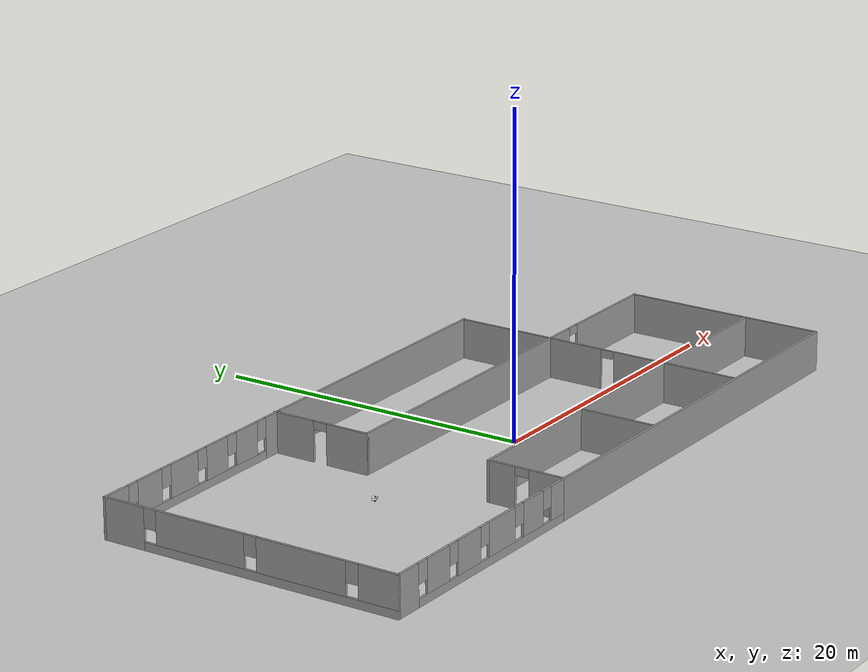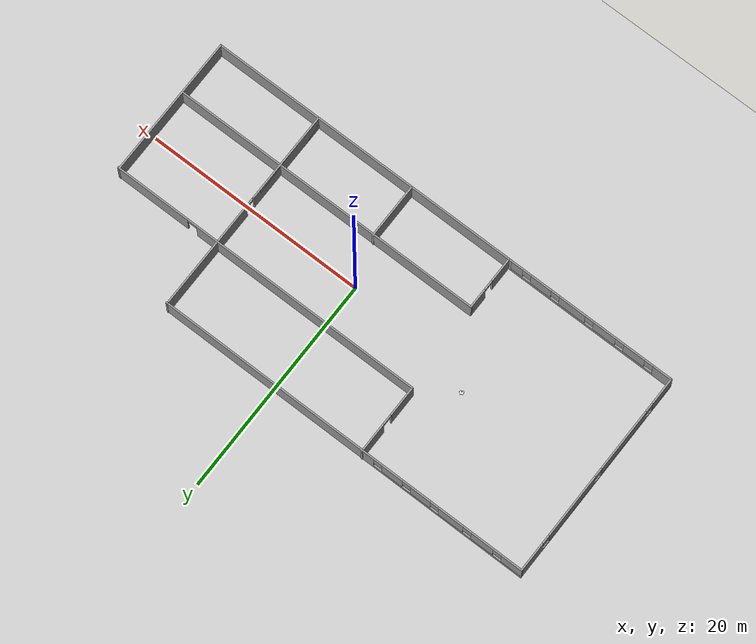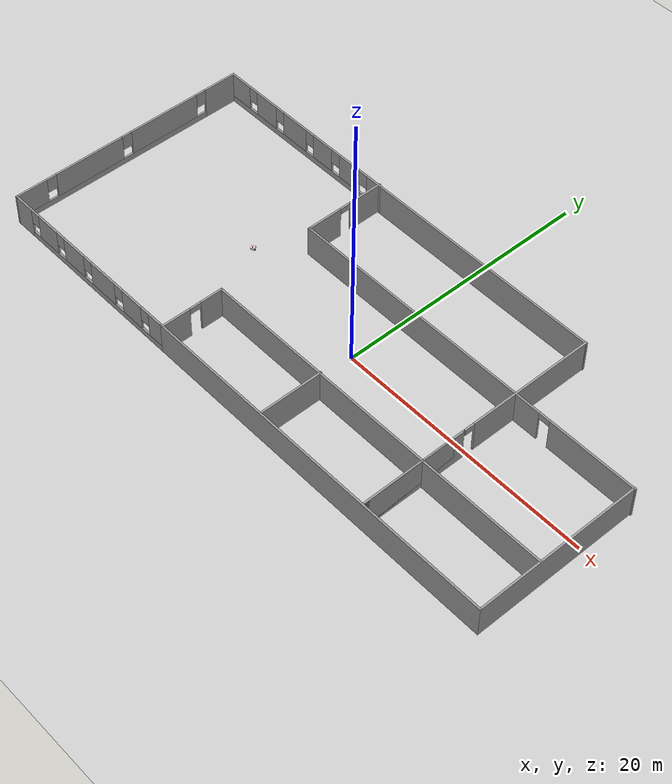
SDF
<sdf version="1.7">
 <world name="default">
  <light name="sun" type="directional">
   <pose>0 0 10 0 -0 0</pose>
   <diffuse>0.8 0.8 0.8 1</diffuse>
   <specular>0.2 0.2 0.2 1</specular>
   <attenuation>
    <range>1000</range>
    <constant>0.9</constant>
    <linear>0.01</linear>
    <quadratic>0.001</quadratic>
   </attenuation>
   <direction>-0.5 0.1 -0.9</direction>
   <spot><inner_angle>0</inner_angle><outer_angle>0</outer_angle><falloff>0</falloff></spot>
  </light>
  <model name="ground_plane">
   <static>1</static>
   <link name="link">
    <collision name="collision">
     <geometry><plane><normal>0 0 1</normal><size>100 100</size></plane></geometry>
     <surface>
      <contact><collide_bitmask>65535</collide_bitmask></contact>
      <friction><ode><mu>100</mu><mu2>50</mu2></ode></friction>
     </surface>
    </collision>
    <visual name="visual">
     <cast_shadows>0</cast_shadows>
     <geometry><plane><normal>0 0 1</normal><size>100 100</size></plane></geometry>
     <material>
      <script><uri>file://media/materials/scripts/gazebo.material</uri><name>Gazebo/Grey</name></script>
     </material>
    </visual>
   </link>
  </model>
  <gravity>0 0 -9.8</gravity>
  <magnetic_field>6e-06 2.3e-05 -4.2e-05</magnetic_field>
  <atmosphere type="adiabatic"/>
  <physics type="ode">
   <max_step_size>0.001</max_step_size>
   <real_time_factor>1</real_time_factor>
   <real_time_update_rate>1000</real_time_update_rate>
  </physics>
  <scene><ambient>0.4 0.4 0.4 1</ambient><background>0.7 0.7 0.7 1</background><shadows>1</shadows></scene>
  <spherical_coordinates>
   <surface_model>EARTH_WGS84</surface_model>
   <latitude_deg>0</latitude_deg>
   <longitude_deg>0</longitude_deg>
   <elevation>0</elevation>
   <heading_deg>0</heading_deg>
  </spherical_coordinates>
  <model name="my_bot">
   <link name="base_link">
    <inertial>
     <pose>0.055714 0 0.078571 0 -0 0</pose>
     <mass>0.7</mass>
     <inertia>
      <ixx>0.0064169</ixx>
      <ixy>0</ixy>
      <ixz>0.00118929</ixz>
      <iyy>0.00745405</iyy>
      <iyz>0</iyz>
      <izz>0.00876214</izz>
     </inertia>
    </inertial>
    <collision name="base_link_fixed_joint_lump__chassis_collision">
     <pose>0.05 0 0.075 0 -0 0</pose>
     <geometry><box><size>0.3 0.3 0.15</size></box></geometry>
    </collision>
    <collision name="base_link_fixed_joint_lump__caster_wheel_collision_1">
     <pose>0.14 0 0 0 -0 0</pose>
     <geometry><sphere><radius>0.05</radius></sphere></geometry>
     <surface><friction><ode><mu>0.001</mu><mu2>0.001</mu2></ode></friction></surface>
    </collision>
    <collision name="base_link_fixed_joint_lump__laser_frame_collision_2">
     <pose>0 0 0.175 0 -0 0</pose>
     <geometry><cylinder><length>0.04</length><radius>0.05</radius></cylinder></geometry>
    </collision>
    <visual name="base_link_fixed_joint_lump__chassis_visual">
     <pose>0.05 0 0.075 0 -0 0</pose>
     <geometry><box><size>0.3 0.3 0.15</size></box></geometry>
     <material>
      <script><name>Gazebo/White</name><uri>file://media/materials/scripts/gazebo.material</uri></script>
     </material>
    </visual>
    <visual name="base_link_fixed_joint_lump__camera_link_visual_1">
     <pose>0.205 0 0.08 0 -0 0</pose>
     <geometry><box><size>0.01 0.03 0.03</size></box></geometry>
     <material>
      <script><name>Gazebo/Red</name><uri>file://media/materials/scripts/gazebo.material</uri></script>
     </material>
    </visual>
    <visual name="base_link_fixed_joint_lump__caster_wheel_visual_2">
     <pose>0.14 0 0 0 -0 0</pose>
     <geometry><sphere><radius>0.05</radius></sphere></geometry>
     <material>
      <script><name>Gazebo/Black</name><uri>file://media/materials/scripts/gazebo.material</uri></script>
     </material>
    </visual>
    <visual name="base_link_fixed_joint_lump__laser_frame_visual_3">
     <pose>0 0 0.175 0 -0 0</pose>
     <geometry><cylinder><length>0.04</length><radius>0.05</radius></cylinder></geometry>
     <material>
      <script><name>Gazebo/Red</name><uri>file://media/materials/scripts/gazebo.material</uri></script>
     </material>
    </visual>
    <sensor name="camera" type="camera">
     <visualize>1</visualize>
     <update_rate>10</update_rate>
     <camera>
      <horizontal_fov>1.089</horizontal_fov>
      <image><format>R8G8B8</format><width>640</width><height>480</height></image>
      <clip><near>0.05</near><far>8</far></clip>
     </camera>
     <plugin name="camera_controller" filename="libgazebo_ros_camera.so">
      <frame_name>camera_link_optical</frame_name>
     </plugin>
     <pose>0.205 0 0.08 0 -0 0</pose>
    </sensor>
    <sensor name="laser" type="ray">
     <visualize>0</visualize>
     <update_rate>10</update_rate>
     <ray>
      <scan>
       <horizontal>
        <samples>360</samples>
        <min_angle>-3.14</min_angle>
        <max_angle>3.14</max_angle>
        <resolution>1</resolution>
       </horizontal>
       <vertical><samples>1</samples><min_angle>0</min_angle><max_angle>0</max_angle></vertical>
      </scan>
      <range><min>0.3</min><max>12</max></range>
     </ray>
     <plugin name="laser_controller" filename="libgazebo_ros_ray_sensor.so">
      <ros><argument>~/out:=scan</argument></ros>
      <output_type>sensor_msgs/LaserScan</output_type>
      <frame_name>laser_frame</frame_name>
     </plugin>
     <pose>0 0 0.175 0 -0 0</pose>
    </sensor>
   </link>
   <joint name="left_wheel_joint" type="revolute">
    <pose relative_to="base_link">0 0.175 0 -1.5708 0 0</pose>
    <parent>base_link</parent>
    <child>left_wheel</child>
    <axis>
     <xyz>0 0 1</xyz>
     <limit><lower>-1e+16</lower><upper>1e+16</upper></limit>
     <dynamics><spring_reference>0</spring_reference><spring_stiffness>0</spring_stiffness></dynamics>
    </axis>
   </joint>
   <link name="left_wheel">
    <pose relative_to="left_wheel_joint">0 0 0 0 -0 0</pose>
    <inertial>
     <mass>0.1</mass>
     <inertia>
      <ixx>8.33333e-05</ixx>
      <ixy>0</ixy>
      <ixz>0</ixz>
      <iyy>8.33333e-05</iyy>
      <iyz>0</iyz>
      <izz>0.000125</izz>
     </inertia>
    </inertial>
    <collision name="left_wheel_collision">
     <geometry><cylinder><length>0.04</length><radius>0.05</radius></cylinder></geometry>
    </collision>
    <visual name="left_wheel_visual">
     <geometry><cylinder><length>0.04</length><radius>0.05</radius></cylinder></geometry>
     <material>
      <script><name>Gazebo/Blue</name><uri>file://media/materials/scripts/gazebo.material</uri></script>
     </material>
    </visual>
   </link>
   <joint name="right_wheel_joint" type="revolute">
    <pose relative_to="base_link">0 -0.175 0 1.5708 -0 0</pose>
    <parent>base_link</parent>
    <child>right_wheel</child>
    <axis>
     <xyz>0 0 -1</xyz>
     <limit><lower>-1e+16</lower><upper>1e+16</upper></limit>
     <dynamics><spring_reference>0</spring_reference><spring_stiffness>0</spring_stiffness></dynamics>
    </axis>
   </joint>
   <link name="right_wheel">
    <pose relative_to="right_wheel_joint">0 0 0 0 -0 0</pose>
    <inertial>
     <mass>0.1</mass>
     <inertia>
      <ixx>8.33333e-05</ixx>
      <ixy>0</ixy>
      <ixz>0</ixz>
      <iyy>8.33333e-05</iyy>
      <iyz>0</iyz>
      <izz>0.000125</izz>
     </inertia>
    </inertial>
    <collision name="right_wheel_collision">
     <geometry><cylinder><length>0.04</length><radius>0.05</radius></cylinder></geometry>
    </collision>
    <visual name="right_wheel_visual">
     <geometry><cylinder><length>0.04</length><radius>0.05</radius></cylinder></geometry>
     <material>
      <script><name>Gazebo/Blue</name><uri>file://media/materials/scripts/gazebo.material</uri></script>
     </material>
    </visual>
   </link>
   <static>0</static>
   <plugin name="diff_drive" filename="libgazebo_ros_diff_drive.so">
    <left_joint>left_wheel_joint</left_joint>
    <right_joint>right_wheel_joint</right_joint>
    <wheel_separation>0.35</wheel_separation>
    <wheel_diameter>0.1</wheel_diameter>
    <max_wheel_torque>200</max_wheel_torque>
    <max_wheel_acceleration>10.0</max_wheel_acceleration>
    <odometry_frame>odom</odometry_frame>
    <robot_base_frame>base_link</robot_base_frame>
    <publish_odom>1</publish_odom>
    <publish_odom_tf>1</publish_odom_tf>
    <publish_wheel_tf>1</publish_wheel_tf>
   </plugin>
   <pose>-11.6788 1.58101 0.05 0 1e-06 1.99079</pose>
  </model>
  <model name="first_tactic_model">
   <pose>-1.95828 0.931225 0 0 -0 0</pose>
   <link name="Wall_19">
    <collision name="Wall_19_Collision">
     <geometry><box><size>29 0.15 2.5</size></box></geometry>
     <pose>0 0 1.25 0 -0 0</pose>
    </collision>
    <visual name="Wall_19_Visual">
     <pose>0 0 1.25 0 -0 0</pose>
     <geometry><box><size>29 0.15 2.5</size></box></geometry>
     <material>
      <script><uri>file://media/materials/scripts/gazebo.material</uri><name>Gazebo/Grey</name></script>
      <ambient>1 1 1 1</ambient>
     </material>
     <meta><layer>0</layer></meta>
    </visual>
    <pose>7.7639 -9.58545 0 0 -0 3.14159</pose>
   </link>
   <link name="Wall_21">
    <pose>12.3851 -0.000286 0 0 -0 -1.5708</pose>
    <visual name="Wall_21_Visual_0">
     <pose>-4.62495 0 1.25 0 -0 0</pose>
     <geometry><box><size>10.0001 0.15 2.5</size></box></geometry>
     <material>
      <script><uri>file://media/materials/scripts/gazebo.material</uri><name>Gazebo/Grey</name></script>
      <ambient>1 1 1 1</ambient>
     </material>
     <meta><layer>0</layer></meta>
    </visual>
    <collision name="Wall_21_Collision_0">
     <geometry><box><size>10.0001 0.15 2.5</size></box></geometry>
     <pose>-4.62495 0 1.25 0 -0 0</pose>
    </collision>
    <visual name="Wall_21_Visual_1">
     <pose>5.45005 0 1.25 0 -0 0</pose>
     <geometry><box><size>8.3499 0.15 2.5</size></box></geometry>
     <material>
      <script><uri>file://media/materials/scripts/gazebo.material</uri><name>Gazebo/Grey</name></script>
      <ambient>1 1 1 1</ambient>
     </material>
     <meta><layer>0</layer></meta>
    </visual>
    <collision name="Wall_21_Collision_1">
     <geometry><box><size>8.3499 0.15 2.5</size></box></geometry>
     <pose>5.45005 0 1.25 0 -0 0</pose>
    </collision>
    <visual name="Wall_21_Visual_2">
     <pose>5.84998 0 1.25 0 -0 0</pose>
     <geometry><box><size>7.55004 0.15 2.5</size></box></geometry>
     <material>
      <script><uri>file://media/materials/scripts/gazebo.material</uri><name>Gazebo/Grey</name></script>
      <ambient>1 1 1 1</ambient>
     </material>
     <meta><layer>0</layer></meta>
    </visual>
    <collision name="Wall_21_Collision_2">
     <geometry><box><size>7.55004 0.15 2.5</size></box></geometry>
     <pose>5.84998 0 1.25 0 -0 0</pose>
    </collision>
    <visual name="Wall_21_Visual_3">
     <pose>0.77503 0 2.25 0 -0 0</pose>
     <geometry><box><size>0.799862 0.15 0.5</size></box></geometry>
     <material>
      <script><uri>file://media/materials/scripts/gazebo.material</uri><name>Gazebo/Grey</name></script>
      <ambient>1 1 1 1</ambient>
     </material>
     <meta><layer>0</layer></meta>
    </visual>
    <collision name="Wall_21_Collision_3">
     <geometry><box><size>0.799862 0.15 0.5</size></box></geometry>
     <pose>0.77503 0 2.25 0 -0 0</pose>
    </collision>
   </link>
   <link name="Wall_25">
    <pose>7.7111 3.23546 0 0 -0 0</pose>
    <visual name="Wall_25_Visual_0">
     <pose>-3.95283 0 1.25 0 -0 0</pose>
     <geometry><box><size>21.3443 0.15 2.5</size></box></geometry>
     <material>
      <script><uri>file://media/materials/scripts/gazebo.material</uri><name>Gazebo/Grey</name></script>
      <ambient>1 1 1 1</ambient>
     </material>
     <meta><layer>0</layer></meta>
    </visual>
    <collision name="Wall_25_Collision_0">
     <geometry><box><size>21.3443 0.15 2.5</size></box></geometry>
     <pose>-3.95283 0 1.25 0 -0 0</pose>
    </collision>
    <visual name="Wall_25_Visual_1">
     <pose>11.1222 0 1.25 0 -0 0</pose>
     <geometry><box><size>7.00566 0.15 2.5</size></box></geometry>
     <material>
      <script><uri>file://media/materials/scripts/gazebo.material</uri><name>Gazebo/Grey</name></script>
      <ambient>1 1 1 1</ambient>
     </material>
     <meta><layer>0</layer></meta>
    </visual>
    <collision name="Wall_25_Collision_1">
     <geometry><box><size>7.00566 0.15 2.5</size></box></geometry>
     <pose>11.1222 0 1.25 0 -0 0</pose>
    </collision>
    <visual name="Wall_25_Visual_2">
     <pose>7.16934 0 2.25 0 -0 0</pose>
     <geometry><box><size>0.9 0.15 0.5</size></box></geometry>
     <material>
      <script><uri>file://media/materials/scripts/gazebo.material</uri><name>Gazebo/Grey</name></script>
      <ambient>1 1 1 1</ambient>
     </material>
     <meta><layer>0</layer></meta>
    </visual>
    <collision name="Wall_25_Collision_2">
     <geometry><box><size>0.9 0.15 0.5</size></box></geometry>
     <pose>7.16934 0 2.25 0 -0 0</pose>
    </collision>
   </link>
   <link name="Wall_27">
    <collision name="Wall_27_Collision">
     <geometry><box><size>19.25 0.15 2.5</size></box></geometry>
     <pose>0 0 1.25 0 -0 0</pose>
    </collision>
    <visual name="Wall_27_Visual">
     <pose>0 0 1.25 0 -0 0</pose>
     <geometry><box><size>19.25 0.15 2.5</size></box></geometry>
     <material>
      <script><uri>file://media/materials/scripts/gazebo.material</uri><name>Gazebo/Grey</name></script>
      <ambient>1 1 1 1</ambient>
     </material>
     <meta><layer>0</layer></meta>
    </visual>
    <pose>2.8889 9.51455 0 0 -0 0</pose>
   </link>
   <link name="Wall_29">
    <collision name="Wall_29_Collision">
     <geometry><box><size>13 0.15 2.5</size></box></geometry>
     <pose>0 0 1.25 0 -0 0</pose>
    </collision>
    <visual name="Wall_29_Visual">
     <pose>0 0 1.25 0 -0 0</pose>
     <geometry><box><size>13 0.15 2.5</size></box></geometry>
     <material>
      <script><uri>file://media/materials/scripts/gazebo.material</uri><name>Gazebo/Grey</name></script>
      <ambient>1 1 1 1</ambient>
     </material>
     <meta><layer>0</layer></meta>
    </visual>
    <pose>22.1889 -3.16045 0 0 -0 1.5708</pose>
   </link>
   <link name="Wall_32">
    <collision name="Wall_32_Collision">
     <geometry><box><size>28.75 0.15 2.5</size></box></geometry>
     <pose>0 0 1.25 0 -0 0</pose>
    </collision>
    <visual name="Wall_32_Visual">
     <pose>0 0 1.25 0 -0 0</pose>
     <geometry><box><size>28.75 0.15 2.5</size></box></geometry>
     <material>
      <script><uri>file://media/materials/scripts/gazebo.material</uri><name>Gazebo/Grey</name></script>
      <ambient>1 1 1 1</ambient>
     </material>
     <meta><layer>0</layer></meta>
    </visual>
    <pose>7.84073 -4.70164 0 0 -0 3.14159</pose>
   </link>
   <link name="Wall_34">
    <pose>-14.4611 9.51455 0 0 -0 3.14159</pose>
    <visual name="Wall_34_Visual_0">
     <pose>-7.17951 0 1.25 0 -0 0</pose>
     <geometry><box><size>1.39099 0.15 2.5</size></box></geometry>
     <material>
      <script><uri>file://media/materials/scripts/gazebo.material</uri><name>Gazebo/Grey</name></script>
      <ambient>1 1 1 1</ambient>
     </material>
     <meta><layer>0</layer></meta>
    </visual>
    <collision name="Wall_34_Collision_0">
     <geometry><box><size>1.39099 0.15 2.5</size></box></geometry>
     <pose>-7.17951 0 1.25 0 -0 0</pose>
    </collision>
    <visual name="Wall_34_Visual_1">
     <pose>0.695494 0 0.25 0 -0 0</pose>
     <geometry><box><size>14.359 0.15 0.5</size></box></geometry>
     <material>
      <script><uri>file://media/materials/scripts/gazebo.material</uri><name>Gazebo/Grey</name></script>
      <ambient>1 1 1 1</ambient>
     </material>
     <meta><layer>0</layer></meta>
    </visual>
    <collision name="Wall_34_Collision_1">
     <geometry><box><size>14.359 0.15 0.5</size></box></geometry>
     <pose>0.695494 0 0.25 0 -0 0</pose>
    </collision>
    <visual name="Wall_34_Visual_2">
     <pose>-4.69963 0 1.5 0 -0 0</pose>
     <geometry><box><size>1.96876 0.15 2</size></box></geometry>
     <material>
      <script><uri>file://media/materials/scripts/gazebo.material</uri><name>Gazebo/Grey</name></script>
      <ambient>1 1 1 1</ambient>
     </material>
     <meta><layer>0</layer></meta>
    </visual>
    <collision name="Wall_34_Collision_2">
     <geometry><box><size>1.96876 0.15 2</size></box></geometry>
     <pose>-4.69963 0 1.5 0 -0 0</pose>
    </collision>
    <visual name="Wall_34_Visual_3">
     <pose>-1.96164 0 1.5 0 -0 0</pose>
     <geometry><box><size>1.90723 0.15 2</size></box></geometry>
     <material>
      <script><uri>file://media/materials/scripts/gazebo.material</uri><name>Gazebo/Grey</name></script>
      <ambient>1 1 1 1</ambient>
     </material>
     <meta><layer>0</layer></meta>
    </visual>
    <collision name="Wall_34_Collision_3">
     <geometry><box><size>1.90723 0.15 2</size></box></geometry>
     <pose>-1.96164 0 1.5 0 -0 0</pose>
    </collision>
    <visual name="Wall_34_Visual_4">
     <pose>0.991694 0 1.5 0 -0 0</pose>
     <geometry><box><size>2.39945 0.15 2</size></box></geometry>
     <material>
      <script><uri>file://media/materials/scripts/gazebo.material</uri><name>Gazebo/Grey</name></script>
      <ambient>1 1 1 1</ambient>
     </material>
     <meta><layer>0</layer></meta>
    </visual>
    <collision name="Wall_34_Collision_4">
     <geometry><box><size>2.39945 0.15 2</size></box></geometry>
     <pose>0.991694 0 1.5 0 -0 0</pose>
    </collision>
    <visual name="Wall_34_Visual_5">
     <pose>4.03732 0 1.5 0 -0 0</pose>
     <geometry><box><size>2.09181 0.15 2</size></box></geometry>
     <material>
      <script><uri>file://media/materials/scripts/gazebo.material</uri><name>Gazebo/Grey</name></script>
      <ambient>1 1 1 1</ambient>
     </material>
     <meta><layer>0</layer></meta>
    </visual>
    <collision name="Wall_34_Collision_5">
     <geometry><box><size>2.09181 0.15 2</size></box></geometry>
     <pose>4.03732 0 1.5 0 -0 0</pose>
    </collision>
    <visual name="Wall_34_Visual_6">
     <pose>6.87911 0 1.5 0 -0 0</pose>
     <geometry><box><size>1.99177 0.15 2</size></box></geometry>
     <material>
      <script><uri>file://media/materials/scripts/gazebo.material</uri><name>Gazebo/Grey</name></script>
      <ambient>1 1 1 1</ambient>
     </material>
     <meta><layer>0</layer></meta>
    </visual>
    <collision name="Wall_34_Collision_6">
     <geometry><box><size>1.99177 0.15 2</size></box></geometry>
     <pose>6.87911 0 1.5 0 -0 0</pose>
    </collision>
    <visual name="Wall_34_Visual_7">
     <pose>-6.08401 0 1.9 0 -0 0</pose>
     <geometry><box><size>0.8 0.15 1.2</size></box></geometry>
     <material>
      <script><uri>file://media/materials/scripts/gazebo.material</uri><name>Gazebo/Grey</name></script>
      <ambient>1 1 1 1</ambient>
     </material>
     <meta><layer>0</layer></meta>
    </visual>
    <collision name="Wall_34_Collision_7">
     <geometry><box><size>0.8 0.15 1.2</size></box></geometry>
     <pose>-6.08401 0 1.9 0 -0 0</pose>
    </collision>
    <visual name="Wall_34_Visual_8">
     <pose>-3.31526 0 1.9 0 -0 0</pose>
     <geometry><box><size>0.8 0.15 1.2</size></box></geometry>
     <material>
      <script><uri>file://media/materials/scripts/gazebo.material</uri><name>Gazebo/Grey</name></script>
      <ambient>1 1 1 1</ambient>
     </material>
     <meta><layer>0</layer></meta>
    </visual>
    <collision name="Wall_34_Collision_8">
     <geometry><box><size>0.8 0.15 1.2</size></box></geometry>
     <pose>-3.31526 0 1.9 0 -0 0</pose>
    </collision>
    <visual name="Wall_34_Visual_9">
     <pose>-0.60803 0 1.9 0 -0 0</pose>
     <geometry><box><size>0.8 0.15 1.2</size></box></geometry>
     <material>
      <script><uri>file://media/materials/scripts/gazebo.material</uri><name>Gazebo/Grey</name></script>
      <ambient>1 1 1 1</ambient>
     </material>
     <meta><layer>0</layer></meta>
    </visual>
    <collision name="Wall_34_Collision_9">
     <geometry><box><size>0.8 0.15 1.2</size></box></geometry>
     <pose>-0.60803 0 1.9 0 -0 0</pose>
    </collision>
    <visual name="Wall_34_Visual_10">
     <pose>2.59142 0 1.9 0 -0 0</pose>
     <geometry><box><size>0.8 0.15 1.2</size></box></geometry>
     <material>
      <script><uri>file://media/materials/scripts/gazebo.material</uri><name>Gazebo/Grey</name></script>
      <ambient>1 1 1 1</ambient>
     </material>
     <meta><layer>0</layer></meta>
    </visual>
    <collision name="Wall_34_Collision_10">
     <geometry><box><size>0.8 0.15 1.2</size></box></geometry>
     <pose>2.59142 0 1.9 0 -0 0</pose>
    </collision>
    <visual name="Wall_34_Visual_11">
     <pose>5.48323 0 1.9 0 -0 0</pose>
     <geometry><box><size>0.8 0.15 1.2</size></box></geometry>
     <material>
      <script><uri>file://media/materials/scripts/gazebo.material</uri><name>Gazebo/Grey</name></script>
      <ambient>1 1 1 1</ambient>
     </material>
     <meta><layer>0</layer></meta>
    </visual>
    <collision name="Wall_34_Collision_11">
     <geometry><box><size>0.8 0.15 1.2</size></box></geometry>
     <pose>5.48323 0 1.9 0 -0 0</pose>
    </collision>
   </link>
   <link name="Wall_35">
    <pose>-22.2611 -0.035455 0 0 -0 -1.5708</pose>
    <visual name="Wall_35_Visual_0">
     <pose>-8.24768 0 1.25 0 -0 0</pose>
     <geometry><box><size>2.75464 0.15 2.5</size></box></geometry>
     <material>
      <script><uri>file://media/materials/scripts/gazebo.material</uri><name>Gazebo/Grey</name></script>
      <ambient>1 1 1 1</ambient>
     </material>
     <meta><layer>0</layer></meta>
    </visual>
    <collision name="Wall_35_Collision_0">
     <geometry><box><size>2.75464 0.15 2.5</size></box></geometry>
     <pose>-8.24768 0 1.25 0 -0 0</pose>
    </collision>
    <visual name="Wall_35_Visual_1">
     <pose>1.37732 0 0.25 0 -0 0</pose>
     <geometry><box><size>16.4954 0.15 0.5</size></box></geometry>
     <material>
      <script><uri>file://media/materials/scripts/gazebo.material</uri><name>Gazebo/Grey</name></script>
      <ambient>1 1 1 1</ambient>
     </material>
     <meta><layer>0</layer></meta>
    </visual>
    <collision name="Wall_35_Collision_1">
     <geometry><box><size>16.4954 0.15 0.5</size></box></geometry>
     <pose>1.37732 0 0.25 0 -0 0</pose>
    </collision>
    <visual name="Wall_35_Visual_2">
     <pose>-3.14785 0 1.5 0 -0 0</pose>
     <geometry><box><size>5.84501 0.15 2</size></box></geometry>
     <material>
      <script><uri>file://media/materials/scripts/gazebo.material</uri><name>Gazebo/Grey</name></script>
      <ambient>1 1 1 1</ambient>
     </material>
     <meta><layer>0</layer></meta>
    </visual>
    <collision name="Wall_35_Collision_2">
     <geometry><box><size>5.84501 0.15 2</size></box></geometry>
     <pose>-3.14785 0 1.5 0 -0 0</pose>
    </collision>
    <visual name="Wall_35_Visual_3">
     <pose>3.43563 0 1.5 0 -0 0</pose>
     <geometry><box><size>5.72196 0.15 2</size></box></geometry>
     <material>
      <script><uri>file://media/materials/scripts/gazebo.material</uri><name>Gazebo/Grey</name></script>
      <ambient>1 1 1 1</ambient>
     </material>
     <meta><layer>0</layer></meta>
    </visual>
    <collision name="Wall_35_Collision_3">
     <geometry><box><size>5.72196 0.15 2</size></box></geometry>
     <pose>3.43563 0 1.5 0 -0 0</pose>
    </collision>
    <visual name="Wall_35_Visual_4">
     <pose>8.3608 0 1.5 0 -0 0</pose>
     <geometry><box><size>2.5284 0.15 2</size></box></geometry>
     <material>
      <script><uri>file://media/materials/scripts/gazebo.material</uri><name>Gazebo/Grey</name></script>
      <ambient>1 1 1 1</ambient>
     </material>
     <meta><layer>0</layer></meta>
    </visual>
    <collision name="Wall_35_Collision_4">
     <geometry><box><size>2.5284 0.15 2</size></box></geometry>
     <pose>8.3608 0 1.5 0 -0 0</pose>
    </collision>
    <visual name="Wall_35_Visual_5">
     <pose>-6.47036 0 1.9 0 -0 0</pose>
     <geometry><box><size>0.8 0.15 1.2</size></box></geometry>
     <material>
      <script><uri>file://media/materials/scripts/gazebo.material</uri><name>Gazebo/Grey</name></script>
      <ambient>1 1 1 1</ambient>
     </material>
     <meta><layer>0</layer></meta>
    </visual>
    <collision name="Wall_35_Collision_5">
     <geometry><box><size>0.8 0.15 1.2</size></box></geometry>
     <pose>-6.47036 0 1.9 0 -0 0</pose>
    </collision>
    <visual name="Wall_35_Visual_6">
     <pose>0.17465 0 1.9 0 -0 0</pose>
     <geometry><box><size>0.8 0.15 1.2</size></box></geometry>
     <material>
      <script><uri>file://media/materials/scripts/gazebo.material</uri><name>Gazebo/Grey</name></script>
      <ambient>1 1 1 1</ambient>
     </material>
     <meta><layer>0</layer></meta>
    </visual>
    <collision name="Wall_35_Collision_6">
     <geometry><box><size>0.8 0.15 1.2</size></box></geometry>
     <pose>0.17465 0 1.9 0 -0 0</pose>
    </collision>
    <visual name="Wall_35_Visual_7">
     <pose>6.6966 0 1.9 0 -0 0</pose>
     <geometry><box><size>0.8 0.15 1.2</size></box></geometry>
     <material>
      <script><uri>file://media/materials/scripts/gazebo.material</uri><name>Gazebo/Grey</name></script>
      <ambient>1 1 1 1</ambient>
     </material>
     <meta><layer>0</layer></meta>
    </visual>
    <collision name="Wall_35_Collision_7">
     <geometry><box><size>0.8 0.15 1.2</size></box></geometry>
     <pose>6.6966 0 1.9 0 -0 0</pose>
    </collision>
   </link>
   <link name="Wall_36">
    <pose>-14.4611 -9.58545 0 0 -0 0</pose>
    <visual name="Wall_36_Visual_0">
     <pose>-6.97141 0 1.25 0 -0 0</pose>
     <geometry><box><size>1.80719 0.15 2.5</size></box></geometry>
     <material>
      <script><uri>file://media/materials/scripts/gazebo.material</uri><name>Gazebo/Grey</name></script>
      <ambient>1 1 1 1</ambient>
     </material>
     <meta><layer>0</layer></meta>
    </visual>
    <collision name="Wall_36_Collision_0">
     <geometry><box><size>1.80719 0.15 2.5</size></box></geometry>
     <pose>-6.97141 0 1.25 0 -0 0</pose>
    </collision>
    <visual name="Wall_36_Visual_1">
     <pose>0.903594 0 0.25 0 -0 0</pose>
     <geometry><box><size>13.9428 0.15 0.5</size></box></geometry>
     <material>
      <script><uri>file://media/materials/scripts/gazebo.material</uri><name>Gazebo/Grey</name></script>
      <ambient>1 1 1 1</ambient>
     </material>
     <meta><layer>0</layer></meta>
    </visual>
    <collision name="Wall_36_Collision_1">
     <geometry><box><size>13.9428 0.15 0.5</size></box></geometry>
     <pose>0.903594 0 0.25 0 -0 0</pose>
    </collision>
    <visual name="Wall_36_Visual_2">
     <pose>-4.25267 0 1.5 0 -0 0</pose>
     <geometry><box><size>2.03028 0.15 2</size></box></geometry>
     <material>
      <script><uri>file://media/materials/scripts/gazebo.material</uri><name>Gazebo/Grey</name></script>
      <ambient>1 1 1 1</ambient>
     </material>
     <meta><layer>0</layer></meta>
    </visual>
    <collision name="Wall_36_Collision_2">
     <geometry><box><size>2.03028 0.15 2</size></box></geometry>
     <pose>-4.25267 0 1.5 0 -0 0</pose>
    </collision>
    <visual name="Wall_36_Visual_3">
     <pose>-1.36086 0 1.5 0 -0 0</pose>
     <geometry><box><size>2.15334 0.15 2</size></box></geometry>
     <material>
      <script><uri>file://media/materials/scripts/gazebo.material</uri><name>Gazebo/Grey</name></script>
      <ambient>1 1 1 1</ambient>
     </material>
     <meta><layer>0</layer></meta>
    </visual>
    <collision name="Wall_36_Collision_3">
     <geometry><box><size>2.15334 0.15 2</size></box></geometry>
     <pose>-1.36086 0 1.5 0 -0 0</pose>
    </collision>
    <visual name="Wall_36_Visual_4">
     <pose>1.77706 0 1.5 0 -0 0</pose>
     <geometry><box><size>2.52251 0.15 2</size></box></geometry>
     <material>
      <script><uri>file://media/materials/scripts/gazebo.material</uri><name>Gazebo/Grey</name></script>
      <ambient>1 1 1 1</ambient>
     </material>
     <meta><layer>0</layer></meta>
    </visual>
    <collision name="Wall_36_Collision_4">
     <geometry><box><size>2.52251 0.15 2</size></box></geometry>
     <pose>1.77706 0 1.5 0 -0 0</pose>
    </collision>
    <visual name="Wall_36_Visual_5">
     <pose>4.82269 0 1.5 0 -0 0</pose>
     <geometry><box><size>1.96876 0.15 2</size></box></geometry>
     <material>
      <script><uri>file://media/materials/scripts/gazebo.material</uri><name>Gazebo/Grey</name></script>
      <ambient>1 1 1 1</ambient>
     </material>
     <meta><layer>0</layer></meta>
    </visual>
    <collision name="Wall_36_Collision_5">
     <geometry><box><size>1.96876 0.15 2</size></box></geometry>
     <pose>4.82269 0 1.5 0 -0 0</pose>
    </collision>
    <visual name="Wall_36_Visual_6">
     <pose>7.24103 0 1.5 0 -0 0</pose>
     <geometry><box><size>1.26793 0.15 2</size></box></geometry>
     <material>
      <script><uri>file://media/materials/scripts/gazebo.material</uri><name>Gazebo/Grey</name></script>
      <ambient>1 1 1 1</ambient>
     </material>
     <meta><layer>0</layer></meta>
    </visual>
    <collision name="Wall_36_Collision_6">
     <geometry><box><size>1.26793 0.15 2</size></box></geometry>
     <pose>7.24103 0 1.5 0 -0 0</pose>
    </collision>
    <visual name="Wall_36_Visual_7">
     <pose>-5.66781 0 1.9 0 -0 0</pose>
     <geometry><box><size>0.8 0.15 1.2</size></box></geometry>
     <material>
      <script><uri>file://media/materials/scripts/gazebo.material</uri><name>Gazebo/Grey</name></script>
      <ambient>1 1 1 1</ambient>
     </material>
     <meta><layer>0</layer></meta>
    </visual>
    <collision name="Wall_36_Collision_7">
     <geometry><box><size>0.8 0.15 1.2</size></box></geometry>
     <pose>-5.66781 0 1.9 0 -0 0</pose>
    </collision>
    <visual name="Wall_36_Visual_8">
     <pose>-2.83753 0 1.9 0 -0 0</pose>
     <geometry><box><size>0.8 0.15 1.2</size></box></geometry>
     <material>
      <script><uri>file://media/materials/scripts/gazebo.material</uri><name>Gazebo/Grey</name></script>
      <ambient>1 1 1 1</ambient>
     </material>
     <meta><layer>0</layer></meta>
    </visual>
    <collision name="Wall_36_Collision_8">
     <geometry><box><size>0.8 0.15 1.2</size></box></geometry>
     <pose>-2.83753 0 1.9 0 -0 0</pose>
    </collision>
    <visual name="Wall_36_Visual_9">
     <pose>0.115807 0 1.9 0 -0 0</pose>
     <geometry><box><size>0.8 0.15 1.2</size></box></geometry>
     <material>
      <script><uri>file://media/materials/scripts/gazebo.material</uri><name>Gazebo/Grey</name></script>
      <ambient>1 1 1 1</ambient>
     </material>
     <meta><layer>0</layer></meta>
    </visual>
    <collision name="Wall_36_Collision_9">
     <geometry><box><size>0.8 0.15 1.2</size></box></geometry>
     <pose>0.115807 0 1.9 0 -0 0</pose>
    </collision>
    <visual name="Wall_36_Visual_10">
     <pose>3.43831 0 1.9 0 -0 0</pose>
     <geometry><box><size>0.8 0.15 1.2</size></box></geometry>
     <material>
      <script><uri>file://media/materials/scripts/gazebo.material</uri><name>Gazebo/Grey</name></script>
      <ambient>1 1 1 1</ambient>
     </material>
     <meta><layer>0</layer></meta>
    </visual>
    <collision name="Wall_36_Collision_10">
     <geometry><box><size>0.8 0.15 1.2</size></box></geometry>
     <pose>3.43831 0 1.9 0 -0 0</pose>
    </collision>
    <visual name="Wall_36_Visual_11">
     <pose>6.20707 0 1.9 0 -0 0</pose>
     <geometry><box><size>0.8 0.15 1.2</size></box></geometry>
     <material>
      <script><uri>file://media/materials/scripts/gazebo.material</uri><name>Gazebo/Grey</name></script>
      <ambient>1 1 1 1</ambient>
     </material>
     <meta><layer>0</layer></meta>
    </visual>
    <collision name="Wall_36_Collision_11">
     <geometry><box><size>0.8 0.15 1.2</size></box></geometry>
     <pose>6.20707 0 1.9 0 -0 0</pose>
    </collision>
   </link>
   <link name="Wall_40">
    <collision name="Wall_40_Collision">
     <geometry><box><size>5 0.15 2.5</size></box></geometry>
     <pose>0 0 1.25 0 -0 0</pose>
    </collision>
    <visual name="Wall_40_Visual">
     <pose>0 0 1.25 0 -0 0</pose>
     <geometry><box><size>5 0.15 2.5</size></box></geometry>
     <material>
      <script><uri>file://media/materials/scripts/gazebo.material</uri><name>Gazebo/Grey</name></script>
      <ambient>1 1 1 1</ambient>
     </material>
     <meta><layer>0</layer></meta>
    </visual>
    <pose>3.12862 -7.06511 0 0 -0 -1.5708</pose>
   </link>
   <link name="Wall_42">
    <pose>-6.8389 6.41046 0 0 -0 1.5708</pose>
    <visual name="Wall_42_Visual_0">
     <pose>-1.83777 0 1.25 0 -0 0</pose>
     <geometry><box><size>2.82445 0.15 2.5</size></box></geometry>
     <material>
      <script><uri>file://media/materials/scripts/gazebo.material</uri><name>Gazebo/Grey</name></script>
      <ambient>1 1 1 1</ambient>
     </material>
     <meta><layer>0</layer></meta>
    </visual>
    <collision name="Wall_42_Collision_0">
     <geometry><box><size>2.82445 0.15 2.5</size></box></geometry>
     <pose>-1.83777 0 1.25 0 -0 0</pose>
    </collision>
    <visual name="Wall_42_Visual_1">
     <pose>1.86223 0 1.25 0 -0 0</pose>
     <geometry><box><size>2.77555 0.15 2.5</size></box></geometry>
     <material>
      <script><uri>file://media/materials/scripts/gazebo.material</uri><name>Gazebo/Grey</name></script>
      <ambient>1 1 1 1</ambient>
     </material>
     <meta><layer>0</layer></meta>
    </visual>
    <collision name="Wall_42_Collision_1">
     <geometry><box><size>2.77555 0.15 2.5</size></box></geometry>
     <pose>1.86223 0 1.25 0 -0 0</pose>
    </collision>
    <visual name="Wall_42_Visual_2">
     <pose>0.024449 0 2.25 0 -0 0</pose>
     <geometry><box><size>0.9 0.15 0.5</size></box></geometry>
     <material>
      <script><uri>file://media/materials/scripts/gazebo.material</uri><name>Gazebo/Grey</name></script>
      <ambient>1 1 1 1</ambient>
     </material>
     <meta><layer>0</layer></meta>
    </visual>
    <collision name="Wall_42_Collision_2">
     <geometry><box><size>0.9 0.15 0.5</size></box></geometry>
     <pose>0.024449 0 2.25 0 -0 0</pose>
    </collision>
   </link>
   <link name="Wall_44">
    <pose>-6.45927 -7.12664 0 0 -0 -1.5708</pose>
    <visual name="Wall_44_Visual_0">
     <pose>-1.58 0 1.25 0 -0 0</pose>
     <geometry><box><size>1.84 0.15 2.5</size></box></geometry>
     <material>
      <script><uri>file://media/materials/scripts/gazebo.material</uri><name>Gazebo/Grey</name></script>
      <ambient>1 1 1 1</ambient>
     </material>
     <meta><layer>0</layer></meta>
    </visual>
    <collision name="Wall_44_Collision_0">
     <geometry><box><size>1.84 0.15 2.5</size></box></geometry>
     <pose>-1.58 0 1.25 0 -0 0</pose>
    </collision>
    <visual name="Wall_44_Visual_1">
     <pose>1.37 0 1.25 0 -0 0</pose>
     <geometry><box><size>2.26 0.15 2.5</size></box></geometry>
     <material>
      <script><uri>file://media/materials/scripts/gazebo.material</uri><name>Gazebo/Grey</name></script>
      <ambient>1 1 1 1</ambient>
     </material>
     <meta><layer>0</layer></meta>
    </visual>
    <collision name="Wall_44_Collision_1">
     <geometry><box><size>2.26 0.15 2.5</size></box></geometry>
     <pose>1.37 0 1.25 0 -0 0</pose>
    </collision>
    <visual name="Wall_44_Visual_2">
     <pose>-0.209996 0 2.25 0 -0 0</pose>
     <geometry><box><size>0.9 0.15 0.5</size></box></geometry>
     <material>
      <script><uri>file://media/materials/scripts/gazebo.material</uri><name>Gazebo/Grey</name></script>
      <ambient>1 1 1 1</ambient>
     </material>
     <meta><layer>0</layer></meta>
    </visual>
    <collision name="Wall_44_Collision_2">
     <geometry><box><size>0.9 0.15 0.5</size></box></geometry>
     <pose>-0.209996 0 2.25 0 -0 0</pose>
    </collision>
   </link>
   <static>1</static>
  </model>
 </world>
</sdf>
